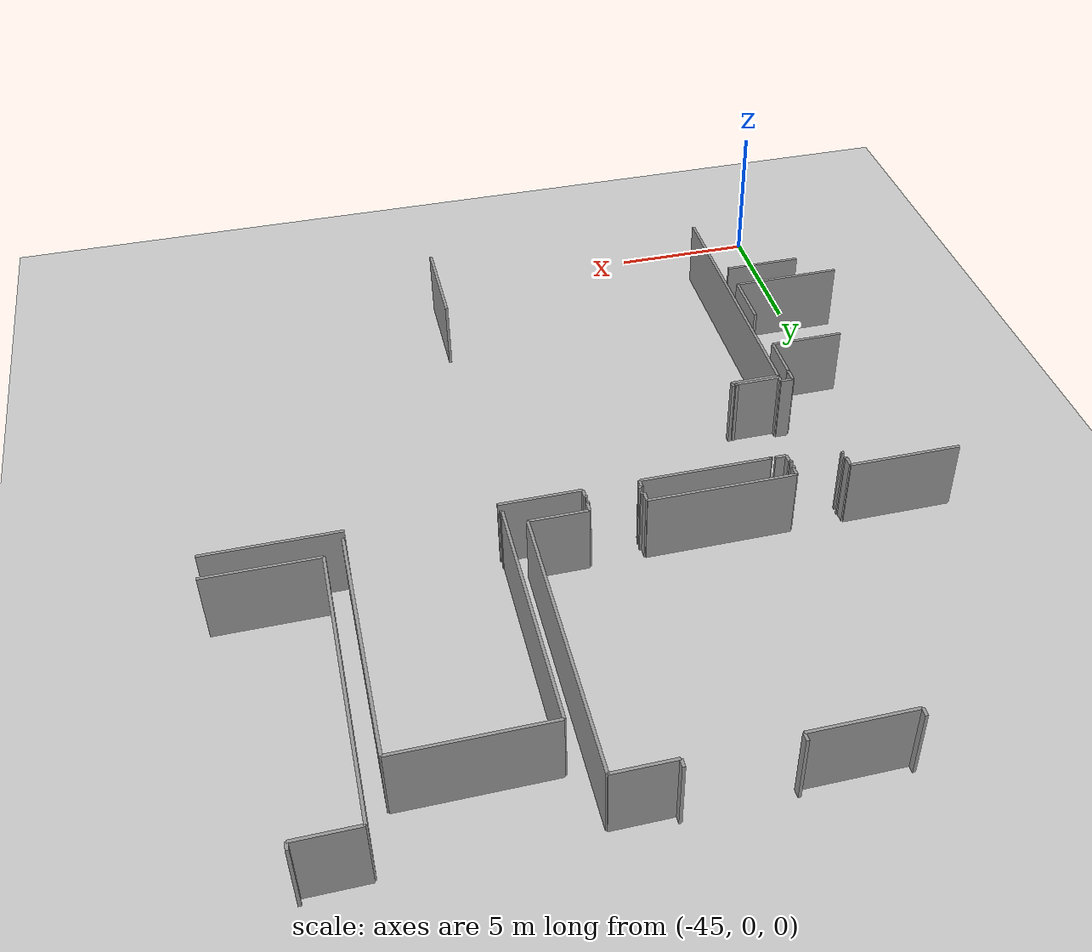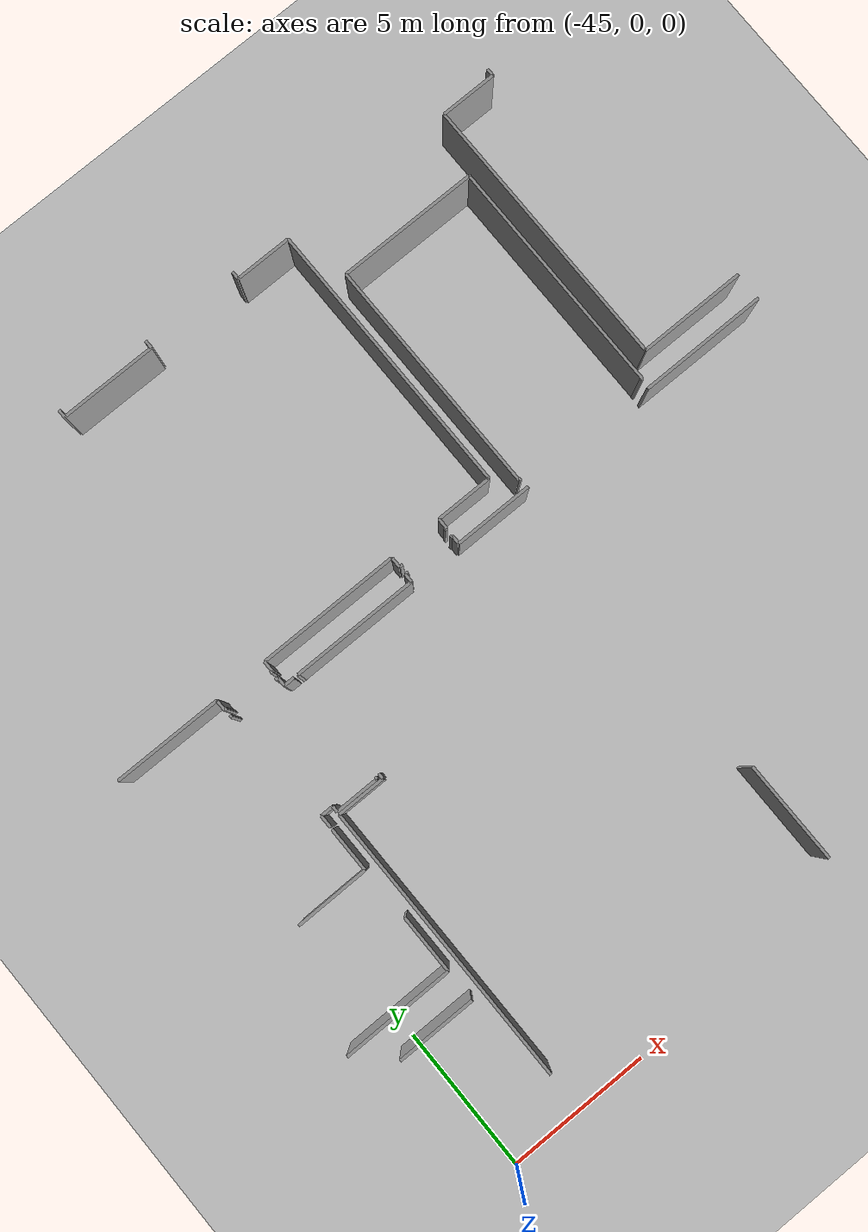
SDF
<sdf version="1.6">
 <world name="default">
  <model name="ground_plane">
   <static>1</static>
   <link name="link">
    <collision name="collision">
     <geometry><plane><normal>0 0 1</normal><size>100 100</size></plane></geometry>
     <surface><friction><ode><mu>100</mu><mu2>50</mu2></ode></friction></surface>
    </collision>
    <visual name="visual">
     <cast_shadows>0</cast_shadows>
     <geometry><plane><normal>0 0 1</normal><size>100 100</size></plane></geometry>
     <material>
      <script><uri>file://media/materials/scripts/gazebo.material</uri><name>Gazebo/Grey</name></script>
     </material>
    </visual>
   </link>
  </model>
  <model name="0510032192_A_40_1_103">
   <static>1</static>
   <link name="Wall_39">
    <collision name="Wall_39_Collision">
     <geometry><box><size>0.279623442125 0.1 2.5</size></box></geometry>
     <pose>0.139811721063 0 1.25 0 0 0</pose>
    </collision>
    <visual name="Wall_39_Visual">
     <pose>0.139811721063 0 1.25 0 0 0</pose>
     <geometry><box><size>0.279623442125 0.1 2.5</size></box></geometry>
     <material>
      <script><uri>file://media/materials/scripts/gazebo.material</uri><name>Gazebo/Grey</name></script>
      <ambient>1 1 1 1</ambient>
     </material>
    </visual>
    <pose>26.3244953184 -0.01816726589 0 0 0 -1.57079632679</pose>
   </link>
   <link name="Wall_40">
    <collision name="Wall_40_Collision">
     <geometry><box><size>3.39765985288 0.1 2.5</size></box></geometry>
     <pose>1.69882992644 0 1.25 0 0 0</pose>
    </collision>
    <visual name="Wall_40_Visual">
     <pose>1.69882992644 0 1.25 0 0 0</pose>
     <geometry><box><size>3.39765985288 0.1 2.5</size></box></geometry>
     <material>
      <script><uri>file://media/materials/scripts/gazebo.material</uri><name>Gazebo/Grey</name></script>
      <ambient>1 1 1 1</ambient>
     </material>
    </visual>
    <pose>26.3244953184 -0.297790708015 0 0 0 0.0</pose>
   </link>
   <link name="Wall_41">
    <collision name="Wall_41_Collision">
     <geometry><box><size>0.280639792664 0.1 2.5</size></box></geometry>
     <pose>0.140319896332 0 1.25 0 0 0</pose>
    </collision>
    <visual name="Wall_41_Visual">
     <pose>0.140319896332 0 1.25 0 0 0</pose>
     <geometry><box><size>0.280639792664 0.1 2.5</size></box></geometry>
     <material>
      <script><uri>file://media/materials/scripts/gazebo.material</uri><name>Gazebo/Grey</name></script>
      <ambient>1 1 1 1</ambient>
     </material>
    </visual>
    <pose>29.7221551713 -0.297790708015 0 0 0 1.57079632679</pose>
   </link>
   <link name="Wall_42">
    <collision name="Wall_42_Collision">
     <geometry><box><size>0.281783187021 0.1 2.5</size></box></geometry>
     <pose>0.140891593511 0 1.25 0 0 0</pose>
    </collision>
    <visual name="Wall_42_Visual">
     <pose>0.140891593511 0 1.25 0 0 0</pose>
     <geometry><box><size>0.281783187021 0.1 2.5</size></box></geometry>
     <material>
      <script><uri>file://media/materials/scripts/gazebo.material</uri><name>Gazebo/Grey</name></script>
      <ambient>1 1 1 1</ambient>
     </material>
    </visual>
    <pose>33.1466212697 -0.0171509153507 0 0 0 -1.57079632679</pose>
   </link>
   <link name="Wall_43">
    <collision name="Wall_43_Collision">
     <geometry><box><size>1.98442442799 0.1 2.5</size></box></geometry>
     <pose>0.992212213993 0 1.25 0 0 0</pose>
    </collision>
    <visual name="Wall_43_Visual">
     <pose>0.992212213993 0 1.25 0 0 0</pose>
     <geometry><box><size>1.98442442799 0.1 2.5</size></box></geometry>
     <material>
      <script><uri>file://media/materials/scripts/gazebo.material</uri><name>Gazebo/Grey</name></script>
      <ambient>1 1 1 1</ambient>
     </material>
    </visual>
    <pose>33.1466212697 -0.298934102372 0 0 0 0.0</pose>
   </link>
   <link name="Wall_44">
    <collision name="Wall_44_Collision">
     <geometry><box><size>9.73740042941 0.1 2.5</size></box></geometry>
     <pose>4.8687002147 0 1.25 0 0 0</pose>
    </collision>
    <visual name="Wall_44_Visual">
     <pose>4.8687002147 0 1.25 0 0 0</pose>
     <geometry><box><size>9.73740042941 0.1 2.5</size></box></geometry>
     <material>
      <script><uri>file://media/materials/scripts/gazebo.material</uri><name>Gazebo/Grey</name></script>
      <ambient>1 1 1 1</ambient>
     </material>
    </visual>
    <pose>35.1310456977 -0.298934102372 0 0 0 -1.57079632679</pose>
   </link>
   <link name="Wall_45">
    <collision name="Wall_45_Collision">
     <geometry><box><size>1.97540431695 0.1 2.5</size></box></geometry>
     <pose>0.987702158474 0 1.25 0 0 0</pose>
    </collision>
    <visual name="Wall_45_Visual">
     <pose>0.987702158474 0 1.25 0 0 0</pose>
     <geometry><box><size>1.97540431695 0.1 2.5</size></box></geometry>
     <material>
      <script><uri>file://media/materials/scripts/gazebo.material</uri><name>Gazebo/Grey</name></script>
      <ambient>1 1 1 1</ambient>
     </material>
    </visual>
    <pose>35.1310456977 -10.0363345318 0 0 0 3.14159265359</pose>
   </link>
   <link name="Wall_46">
    <collision name="Wall_46_Collision">
     <geometry><box><size>0.368045939044 0.1 2.5</size></box></geometry>
     <pose>0.184022969522 0 1.25 0 0 0</pose>
    </collision>
    <visual name="Wall_46_Visual">
     <pose>0.184022969522 0 1.25 0 0 0</pose>
     <geometry><box><size>0.368045939044 0.1 2.5</size></box></geometry>
     <material>
      <script><uri>file://media/materials/scripts/gazebo.material</uri><name>Gazebo/Grey</name></script>
      <ambient>1 1 1 1</ambient>
     </material>
    </visual>
    <pose>33.1556413807 -10.0363345318 0 0 0 -1.57079632679</pose>
   </link>
   <link name="Wall_47">
    <collision name="Wall_47_Collision">
     <geometry><box><size>0.0823243936834 0.1 2.5</size></box></geometry>
     <pose>0.0411621968417 0 1.25 0 0 0</pose>
    </collision>
    <visual name="Wall_47_Visual">
     <pose>0.0411621968417 0 1.25 0 0 0</pose>
     <geometry><box><size>0.0823243936834 0.1 2.5</size></box></geometry>
     <material>
      <script><uri>file://media/materials/scripts/gazebo.material</uri><name>Gazebo/Grey</name></script>
      <ambient>1 1 1 1</ambient>
     </material>
    </visual>
    <pose>33.1556413807 -10.4043804708 0 0 0 3.14159265359</pose>
   </link>
   <link name="Wall_48">
    <collision name="Wall_48_Collision">
     <geometry><box><size>0.115228742393 0.1 2.5</size></box></geometry>
     <pose>0.0576143711966 0 1.25 0 0 0</pose>
    </collision>
    <visual name="Wall_48_Visual">
     <pose>0.0576143711966 0 1.25 0 0 0</pose>
     <geometry><box><size>0.115228742393 0.1 2.5</size></box></geometry>
     <material>
      <script><uri>file://media/materials/scripts/gazebo.material</uri><name>Gazebo/Grey</name></script>
      <ambient>1 1 1 1</ambient>
     </material>
    </visual>
    <pose>31.4127272496 -10.4043804708 0 0 0 3.14159265359</pose>
   </link>
   <link name="Wall_49">
    <collision name="Wall_49_Collision">
     <geometry><box><size>0.365759150331 0.1 2.5</size></box></geometry>
     <pose>0.182879575165 0 1.25 0 0 0</pose>
    </collision>
    <visual name="Wall_49_Visual">
     <pose>0.182879575165 0 1.25 0 0 0</pose>
     <geometry><box><size>0.365759150331 0.1 2.5</size></box></geometry>
     <material>
      <script><uri>file://media/materials/scripts/gazebo.material</uri><name>Gazebo/Grey</name></script>
      <ambient>1 1 1 1</ambient>
     </material>
    </visual>
    <pose>31.2974985072 -10.4043804708 0 0 0 1.57079632679</pose>
   </link>
   <link name="Wall_50">
    <collision name="Wall_50_Collision">
     <geometry><box><size>4.96639691029 0.1 2.5</size></box></geometry>
     <pose>2.48319845515 0 1.25 0 0 0</pose>
    </collision>
    <visual name="Wall_50_Visual">
     <pose>2.48319845515 0 1.25 0 0 0</pose>
     <geometry><box><size>4.96639691029 0.1 2.5</size></box></geometry>
     <material>
      <script><uri>file://media/materials/scripts/gazebo.material</uri><name>Gazebo/Grey</name></script>
      <ambient>1 1 1 1</ambient>
     </material>
    </visual>
    <pose>31.2974985072 -10.0386213205 0 0 0 3.14159265359</pose>
   </link>
   <link name="Wall_51">
    <collision name="Wall_51_Collision">
     <geometry><box><size>0.37122203448 0.1 2.5</size></box></geometry>
     <pose>0.18561101724 0 1.25 0 0 0</pose>
    </collision>
    <visual name="Wall_51_Visual">
     <pose>0.18561101724 0 1.25 0 0 0</pose>
     <geometry><box><size>0.37122203448 0.1 2.5</size></box></geometry>
     <material>
      <script><uri>file://media/materials/scripts/gazebo.material</uri><name>Gazebo/Grey</name></script>
      <ambient>1 1 1 1</ambient>
     </material>
    </visual>
    <pose>26.3311015969 -10.0386213205 0 0 0 -1.57079632679</pose>
   </link>
   <link name="Wall_52">
    <collision name="Wall_52_Collision">
     <geometry><box><size>0.0811809993267 0.1 2.5</size></box></geometry>
     <pose>0.0405904996633 0 1.25 0 0 0</pose>
    </collision>
    <visual name="Wall_52_Visual">
     <pose>0.0405904996633 0 1.25 0 0 0</pose>
     <geometry><box><size>0.0811809993267 0.1 2.5</size></box></geometry>
     <material>
      <script><uri>file://media/materials/scripts/gazebo.material</uri><name>Gazebo/Grey</name></script>
      <ambient>1 1 1 1</ambient>
     </material>
    </visual>
    <pose>26.3311015969 -10.409843355 0 0 0 3.14159265359</pose>
   </link>
   <link name="Wall_53">
    <collision name="Wall_53_Collision">
     <geometry><box><size>0.0879143216495 0.1 2.5</size></box></geometry>
     <pose>0.0439571608248 0 1.25 0 0 0</pose>
    </collision>
    <visual name="Wall_53_Visual">
     <pose>0.0439571608248 0 1.25 0 0 0</pose>
     <geometry><box><size>0.0879143216495 0.1 2.5</size></box></geometry>
     <material>
      <script><uri>file://media/materials/scripts/gazebo.material</uri><name>Gazebo/Grey</name></script>
      <ambient>1 1 1 1</ambient>
     </material>
    </visual>
    <pose>24.5764994347 -10.409843355 0 0 0 3.14159265359</pose>
   </link>
   <link name="Wall_54">
    <collision name="Wall_54_Collision">
     <geometry><box><size>0.373508823193 0.1 2.5</size></box></geometry>
     <pose>0.186754411597 0 1.25 0 0 0</pose>
    </collision>
    <visual name="Wall_54_Visual">
     <pose>0.186754411597 0 1.25 0 0 0</pose>
     <geometry><box><size>0.373508823193 0.1 2.5</size></box></geometry>
     <material>
      <script><uri>file://media/materials/scripts/gazebo.material</uri><name>Gazebo/Grey</name></script>
      <ambient>1 1 1 1</ambient>
     </material>
    </visual>
    <pose>24.488585113 -10.409843355 0 0 0 1.57079632679</pose>
   </link>
   <link name="Wall_55">
    <collision name="Wall_55_Collision">
     <geometry><box><size>3.79645754655 0.1 2.5</size></box></geometry>
     <pose>1.89822877327 0 1.25 0 0 0</pose>
    </collision>
    <visual name="Wall_55_Visual">
     <pose>1.89822877327 0 1.25 0 0 0</pose>
     <geometry><box><size>3.79645754655 0.1 2.5</size></box></geometry>
     <material>
      <script><uri>file://media/materials/scripts/gazebo.material</uri><name>Gazebo/Grey</name></script>
      <ambient>1 1 1 1</ambient>
     </material>
    </visual>
    <pose>24.488585113 -10.0363345318 0 0 0 3.13965175317</pose>
   </link>
   <link name="Wall_73">
    <collision name="Wall_73_Collision">
     <geometry><box><size>0.100618703391 0.1 2.5</size></box></geometry>
     <pose>0.0503093516954 0 1.25 0 0 0</pose>
    </collision>
    <visual name="Wall_73_Visual">
     <pose>0.0503093516954 0 1.25 0 0 0</pose>
     <geometry><box><size>0.100618703391 0.1 2.5</size></box></geometry>
     <material>
      <script><uri>file://media/materials/scripts/gazebo.material</uri><name>Gazebo/Grey</name></script>
      <ambient>1 1 1 1</ambient>
     </material>
    </visual>
    <pose>24.4648279191 -10.6705372683 0 0 0 0.0</pose>
   </link>
   <link name="Wall_74">
    <collision name="Wall_74_Collision">
     <geometry><box><size>0.105700456087 0.1 2.5</size></box></geometry>
     <pose>0.0528502280436 0 1.25 0 0 0</pose>
    </collision>
    <visual name="Wall_74_Visual">
     <pose>0.0528502280436 0 1.25 0 0 0</pose>
     <geometry><box><size>0.105700456087 0.1 2.5</size></box></geometry>
     <material>
      <script><uri>file://media/materials/scripts/gazebo.material</uri><name>Gazebo/Grey</name></script>
      <ambient>1 1 1 1</ambient>
     </material>
    </visual>
    <pose>26.2349294272 -10.6705372683 0 0 0 0.0</pose>
   </link>
   <link name="Wall_75">
    <collision name="Wall_75_Collision">
     <geometry><box><size>0.309478739217 0.1 2.5</size></box></geometry>
     <pose>0.154739369609 0 1.25 0 0 0</pose>
    </collision>
    <visual name="Wall_75_Visual">
     <pose>0.154739369609 0 1.25 0 0 0</pose>
     <geometry><box><size>0.309478739217 0.1 2.5</size></box></geometry>
     <material>
      <script><uri>file://media/materials/scripts/gazebo.material</uri><name>Gazebo/Grey</name></script>
      <ambient>1 1 1 1</ambient>
     </material>
    </visual>
    <pose>26.3406298832 -10.6705372683 0 0 0 -1.57079632679</pose>
   </link>
   <link name="Wall_76">
    <collision name="Wall_76_Collision">
     <geometry><box><size>0.371349078297 0.1 2.5</size></box></geometry>
     <pose>0.185674539149 0 1.25 0 0 0</pose>
    </collision>
    <visual name="Wall_76_Visual">
     <pose>0.185674539149 0 1.25 0 0 0</pose>
     <geometry><box><size>0.371349078297 0.1 2.5</size></box></geometry>
     <material>
      <script><uri>file://media/materials/scripts/gazebo.material</uri><name>Gazebo/Grey</name></script>
      <ambient>1 1 1 1</ambient>
     </material>
    </visual>
    <pose>26.3406298832 -10.9800160075 0 0 0 0.0</pose>
   </link>
   <link name="Wall_77">
    <collision name="Wall_77_Collision">
     <geometry><box><size>0.0833407442227 0.1 2.5</size></box></geometry>
     <pose>0.0416703721113 0 1.25 0 0 0</pose>
    </collision>
    <visual name="Wall_77_Visual">
     <pose>0.0416703721113 0 1.25 0 0 0</pose>
     <geometry><box><size>0.0833407442227 0.1 2.5</size></box></geometry>
     <material>
      <script><uri>file://media/materials/scripts/gazebo.material</uri><name>Gazebo/Grey</name></script>
      <ambient>1 1 1 1</ambient>
     </material>
    </visual>
    <pose>26.7119789615 -14.8388449176 0 0 0 -1.57079632679</pose>
   </link>
   <link name="Wall_78">
    <collision name="Wall_78_Collision">
     <geometry><box><size>1.53380000762 0.1 2.5</size></box></geometry>
     <pose>0.766900003811 0 1.25 0 0 0</pose>
    </collision>
    <visual name="Wall_78_Visual">
     <pose>0.766900003811 0 1.25 0 0 0</pose>
     <geometry><box><size>1.53380000762 0.1 2.5</size></box></geometry>
     <material>
      <script><uri>file://media/materials/scripts/gazebo.material</uri><name>Gazebo/Grey</name></script>
      <ambient>1 1 1 1</ambient>
     </material>
    </visual>
    <pose>26.7119789615 -14.9221856618 0 0 0 3.14159265359</pose>
   </link>
   <link name="Wall_79">
    <collision name="Wall_79_Collision">
     <geometry><box><size>0.208478904374 0.1 2.5</size></box></geometry>
     <pose>0.104239452187 0 1.25 0 0 0</pose>
    </collision>
    <visual name="Wall_79_Visual">
     <pose>0.104239452187 0 1.25 0 0 0</pose>
     <geometry><box><size>0.208478904374 0.1 2.5</size></box></geometry>
     <material>
      <script><uri>file://media/materials/scripts/gazebo.material</uri><name>Gazebo/Grey</name></script>
      <ambient>1 1 1 1</ambient>
     </material>
    </visual>
    <pose>25.1781789539 -14.9221856618 0 0 0 1.57079632679</pose>
   </link>
   <link name="Wall_80">
    <collision name="Wall_80_Collision">
     <geometry><box><size>0.442239528413 0.1 2.5</size></box></geometry>
     <pose>0.221119764207 0 1.25 0 0 0</pose>
    </collision>
    <visual name="Wall_80_Visual">
     <pose>0.221119764207 0 1.25 0 0 0</pose>
     <geometry><box><size>0.442239528413 0.1 2.5</size></box></geometry>
     <material>
      <script><uri>file://media/materials/scripts/gazebo.material</uri><name>Gazebo/Grey</name></script>
      <ambient>1 1 1 1</ambient>
     </material>
    </visual>
    <pose>25.1781789539 -14.7137067575 0 0 0 3.14159265359</pose>
   </link>
   <link name="Wall_81">
    <collision name="Wall_81_Collision">
     <geometry><box><size>0.442239528413 0.1 2.5</size></box></geometry>
     <pose>0.221119764207 0 1.25 0 0 0</pose>
    </collision>
    <visual name="Wall_81_Visual">
     <pose>0.221119764207 0 1.25 0 0 0</pose>
     <geometry><box><size>0.442239528413 0.1 2.5</size></box></geometry>
     <material>
      <script><uri>file://media/materials/scripts/gazebo.material</uri><name>Gazebo/Grey</name></script>
      <ambient>1 1 1 1</ambient>
     </material>
    </visual>
    <pose>24.7359394255 -14.7137067575 0 0 0 -1.57079632679</pose>
   </link>
   <link name="Wall_109">
    <collision name="Wall_109_Collision">
     <geometry><box><size>1.56619618106 0.1 2.5</size></box></geometry>
     <pose>0.783098090531 0 1.25 0 0 0</pose>
    </collision>
    <visual name="Wall_109_Visual">
     <pose>0.783098090531 0 1.25 0 0 0</pose>
     <geometry><box><size>1.56619618106 0.1 2.5</size></box></geometry>
     <material>
      <script><uri>file://media/materials/scripts/gazebo.material</uri><name>Gazebo/Grey</name></script>
      <ambient>1 1 1 1</ambient>
     </material>
    </visual>
    <pose>24.7297142785 -15.2193411508 0 0 0 -1.57079632679</pose>
   </link>
   <link name="Wall_110">
    <collision name="Wall_110_Collision">
     <geometry><box><size>2.55183311199 0.1 2.5</size></box></geometry>
     <pose>1.275916556 0 1.25 0 0 0</pose>
    </collision>
    <visual name="Wall_110_Visual">
     <pose>1.275916556 0 1.25 0 0 0</pose>
     <geometry><box><size>2.55183311199 0.1 2.5</size></box></geometry>
     <material>
      <script><uri>file://media/materials/scripts/gazebo.material</uri><name>Gazebo/Grey</name></script>
      <ambient>1 1 1 1</ambient>
     </material>
    </visual>
    <pose>24.7297142785 -16.7855373318 0 0 0 -3.13666388737</pose>
   </link>
   <link name="Wall_134">
    <collision name="Wall_134_Collision">
     <geometry><box><size>2.04057779528 0.1 2.5</size></box></geometry>
     <pose>1.02028889764 0 1.25 0 0 0</pose>
    </collision>
    <visual name="Wall_134_Visual">
     <pose>1.02028889764 0 1.25 0 0 0</pose>
     <geometry><box><size>2.04057779528 0.1 2.5</size></box></geometry>
     <material>
      <script><uri>file://media/materials/scripts/gazebo.material</uri><name>Gazebo/Grey</name></script>
      <ambient>1 1 1 1</ambient>
     </material>
    </visual>
    <pose>24.7551230419 -18.6103947251 0 0 0 -1.57079632679</pose>
   </link>
   <link name="Wall_135">
    <collision name="Wall_135_Collision">
     <geometry><box><size>3.87511347875 0.1 2.5</size></box></geometry>
     <pose>1.93755673938 0 1.25 0 0 0</pose>
    </collision>
    <visual name="Wall_135_Visual">
     <pose>1.93755673938 0 1.25 0 0 0</pose>
     <geometry><box><size>3.87511347875 0.1 2.5</size></box></geometry>
     <material>
      <script><uri>file://media/materials/scripts/gazebo.material</uri><name>Gazebo/Grey</name></script>
      <ambient>1 1 1 1</ambient>
     </material>
    </visual>
    <pose>24.7551230419 -20.6509725204 0 0 0 -3.13815026997</pose>
   </link>
   <link name="Wall_139">
    <collision name="Wall_139_Collision">
     <geometry><box><size>3.53601057005 0.1 2.5</size></box></geometry>
     <pose>1.76800528502 0 1.25 0 0 0</pose>
    </collision>
    <visual name="Wall_139_Visual">
     <pose>1.76800528502 0 1.25 0 0 0</pose>
     <geometry><box><size>3.53601057005 0.1 2.5</size></box></geometry>
     <material>
      <script><uri>file://media/materials/scripts/gazebo.material</uri><name>Gazebo/Grey</name></script>
      <ambient>1 1 1 1</ambient>
     </material>
    </visual>
    <pose>35.6299467686 -21.7967807097 0 0 0 -1.57079632679</pose>
   </link>
   <link name="Wall_147">
    <collision name="Wall_147_Collision">
     <geometry><box><size>4.47651595035 0.1 2.5</size></box></geometry>
     <pose>2.23825797518 0 1.25 0 0 0</pose>
    </collision>
    <visual name="Wall_147_Visual">
     <pose>2.23825797518 0 1.25 0 0 0</pose>
     <geometry><box><size>4.47651595035 0.1 2.5</size></box></geometry>
     <material>
      <script><uri>file://media/materials/scripts/gazebo.material</uri><name>Gazebo/Grey</name></script>
      <ambient>1 1 1 1</ambient>
     </material>
    </visual>
    <pose>45.1401928525 -10.9962776161 0 0 0 3.14159265359</pose>
   </link>
   <link name="Wall_148">
    <collision name="Wall_148_Collision">
     <geometry><box><size>2.75583448731 0.1 2.5</size></box></geometry>
     <pose>1.37791724366 0 1.25 0 0 0</pose>
    </collision>
    <visual name="Wall_148_Visual">
     <pose>1.37791724366 0 1.25 0 0 0</pose>
     <geometry><box><size>2.75583448731 0.1 2.5</size></box></geometry>
     <material>
      <script><uri>file://media/materials/scripts/gazebo.material</uri><name>Gazebo/Grey</name></script>
      <ambient>1 1 1 1</ambient>
     </material>
    </visual>
    <pose>35.8988985301 -10.9962776161 0 0 0 3.14159265359</pose>
   </link>
   <link name="Wall_149">
    <collision name="Wall_149_Collision">
     <geometry><box><size>0.306048556147 0.1 2.5</size></box></geometry>
     <pose>0.153024278074 0 1.25 0 0 0</pose>
    </collision>
    <visual name="Wall_149_Visual">
     <pose>0.153024278074 0 1.25 0 0 0</pose>
     <geometry><box><size>0.306048556147 0.1 2.5</size></box></geometry>
     <material>
      <script><uri>file://media/materials/scripts/gazebo.material</uri><name>Gazebo/Grey</name></script>
      <ambient>1 1 1 1</ambient>
     </material>
    </visual>
    <pose>33.1430640428 -10.9962776161 0 0 0 1.57079632679</pose>
   </link>
   <link name="Wall_150">
    <collision name="Wall_150_Collision">
     <geometry><box><size>0.0758451589953 0.1 2.5</size></box></geometry>
     <pose>0.0379225794977 0 1.25 0 0 0</pose>
    </collision>
    <visual name="Wall_150_Visual">
     <pose>0.0379225794977 0 1.25 0 0 0</pose>
     <geometry><box><size>0.0758451589953 0.1 2.5</size></box></geometry>
     <material>
      <script><uri>file://media/materials/scripts/gazebo.material</uri><name>Gazebo/Grey</name></script>
      <ambient>1 1 1 1</ambient>
     </material>
    </visual>
    <pose>33.1430640428 -10.69022906 0 0 0 3.14159265359</pose>
   </link>
   <link name="Wall_151">
    <collision name="Wall_151_Collision">
     <geometry><box><size>0.110528121149 0.1 2.5</size></box></geometry>
     <pose>0.0552640605745 0 1.25 0 0 0</pose>
    </collision>
    <visual name="Wall_151_Visual">
     <pose>0.0552640605745 0 1.25 0 0 0</pose>
     <geometry><box><size>0.110528121149 0.1 2.5</size></box></geometry>
     <material>
      <script><uri>file://media/materials/scripts/gazebo.material</uri><name>Gazebo/Grey</name></script>
      <ambient>1 1 1 1</ambient>
     </material>
    </visual>
    <pose>31.4002769555 -10.69022906 0 0 0 3.14159265359</pose>
   </link>
   <link name="Wall_152">
    <collision name="Wall_152_Collision">
     <geometry><box><size>0.292200780049 0.1 2.5</size></box></geometry>
     <pose>0.146100390025 0 1.25 0 0 0</pose>
    </collision>
    <visual name="Wall_152_Visual">
     <pose>0.146100390025 0 1.25 0 0 0</pose>
     <geometry><box><size>0.292200780049 0.1 2.5</size></box></geometry>
     <material>
      <script><uri>file://media/materials/scripts/gazebo.material</uri><name>Gazebo/Grey</name></script>
      <ambient>1 1 1 1</ambient>
     </material>
    </visual>
    <pose>31.2897488344 -10.69022906 0 0 0 -1.57079632679</pose>
   </link>
   <link name="Wall_153">
    <collision name="Wall_153_Collision">
     <geometry><box><size>4.43319400861 0.1 2.5</size></box></geometry>
     <pose>2.21659700431 0 1.25 0 0 0</pose>
    </collision>
    <visual name="Wall_153_Visual">
     <pose>2.21659700431 0 1.25 0 0 0</pose>
     <geometry><box><size>4.43319400861 0.1 2.5</size></box></geometry>
     <material>
      <script><uri>file://media/materials/scripts/gazebo.material</uri><name>Gazebo/Grey</name></script>
      <ambient>1 1 1 1</ambient>
     </material>
    </visual>
    <pose>31.2897488344 -10.9824298401 0 0 0 3.14159265359</pose>
   </link>
   <link name="Wall_154">
    <collision name="Wall_154_Collision">
     <geometry><box><size>0.0579319807402 0.1 2.5</size></box></geometry>
     <pose>0.0289659903701 0 1.25 0 0 0</pose>
    </collision>
    <visual name="Wall_154_Visual">
     <pose>0.0289659903701 0 1.25 0 0 0</pose>
     <geometry><box><size>0.0579319807402 0.1 2.5</size></box></geometry>
     <material>
      <script><uri>file://media/materials/scripts/gazebo.material</uri><name>Gazebo/Grey</name></script>
      <ambient>1 1 1 1</ambient>
     </material>
    </visual>
    <pose>26.8565548258 -10.9824298401 0 0 0 -1.57079632679</pose>
   </link>
   <link name="Wall_155">
    <collision name="Wall_155_Collision">
     <geometry><box><size>0.193106602467 0.1 2.5</size></box></geometry>
     <pose>0.0965533012336 0 1.25 0 0 0</pose>
    </collision>
    <visual name="Wall_155_Visual">
     <pose>0.0965533012336 0 1.25 0 0 0</pose>
     <geometry><box><size>0.193106602467 0.1 2.5</size></box></geometry>
     <material>
      <script><uri>file://media/materials/scripts/gazebo.material</uri><name>Gazebo/Grey</name></script>
      <ambient>1 1 1 1</ambient>
     </material>
    </visual>
    <pose>26.8565548258 -14.8304600257 0 0 0 -1.57079632679</pose>
   </link>
   <link name="Wall_156">
    <collision name="Wall_156_Collision">
     <geometry><box><size>1.68599850088 0.1 2.5</size></box></geometry>
     <pose>0.842999250441 0 1.25 0 0 0</pose>
    </collision>
    <visual name="Wall_156_Visual">
     <pose>0.842999250441 0 1.25 0 0 0</pose>
     <geometry><box><size>1.68599850088 0.1 2.5</size></box></geometry>
     <material>
      <script><uri>file://media/materials/scripts/gazebo.material</uri><name>Gazebo/Grey</name></script>
      <ambient>1 1 1 1</ambient>
     </material>
    </visual>
    <pose>26.8565548258 -15.0235666281 0 0 0 3.14159265359</pose>
   </link>
   <link name="Wall_157">
    <collision name="Wall_157_Collision">
     <geometry><box><size>9.85631868264 0.1 2.5</size></box></geometry>
     <pose>4.92815934132 0 1.25 0 0 0</pose>
    </collision>
    <visual name="Wall_157_Visual">
     <pose>4.92815934132 0 1.25 0 0 0</pose>
     <geometry><box><size>9.85631868264 0.1 2.5</size></box></geometry>
     <material>
      <script><uri>file://media/materials/scripts/gazebo.material</uri><name>Gazebo/Grey</name></script>
      <ambient>1 1 1 1</ambient>
     </material>
    </visual>
    <pose>25.1705563249 -15.0235666281 0 0 0 -1.56976516014</pose>
   </link>
   <link name="Wall_158">
    <collision name="Wall_158_Collision">
     <geometry><box><size>8.35656117795 0.1 2.5</size></box></geometry>
     <pose>4.17828058898 0 1.25 0 0 0</pose>
    </collision>
    <visual name="Wall_158_Visual">
     <pose>4.17828058898 0 1.25 0 0 0</pose>
     <geometry><box><size>8.35656117795 0.1 2.5</size></box></geometry>
     <material>
      <script><uri>file://media/materials/scripts/gazebo.material</uri><name>Gazebo/Grey</name></script>
      <ambient>1 1 1 1</ambient>
     </material>
    </visual>
    <pose>35.8047590614 -10.6668529976 0 0 0 1.57079632679</pose>
   </link>
   <link name="Wall_159">
    <collision name="Wall_159_Collision">
     <geometry><box><size>4.94149632208 0.1 2.5</size></box></geometry>
     <pose>2.47074816104 0 1.25 0 0 0</pose>
    </collision>
    <visual name="Wall_159_Visual">
     <pose>2.47074816104 0 1.25 0 0 0</pose>
     <geometry><box><size>4.94149632208 0.1 2.5</size></box></geometry>
     <material>
      <script><uri>file://media/materials/scripts/gazebo.material</uri><name>Gazebo/Grey</name></script>
      <ambient>1 1 1 1</ambient>
     </material>
    </visual>
    <pose>35.8047590614 -2.31029181965 0 0 0 0.0</pose>
   </link>
   <link name="Wall_160">
    <collision name="Wall_160_Collision">
     <geometry><box><size>8.34677880401 0.1 2.5</size></box></geometry>
     <pose>4.173389402 0 1.25 0 0 0</pose>
    </collision>
    <visual name="Wall_160_Visual">
     <pose>4.173389402 0 1.25 0 0 0</pose>
     <geometry><box><size>8.34677880401 0.1 2.5</size></box></geometry>
     <material>
      <script><uri>file://media/materials/scripts/gazebo.material</uri><name>Gazebo/Grey</name></script>
      <ambient>1 1 1 1</ambient>
     </material>
    </visual>
    <pose>40.7462553835 -2.31029181965 0 0 0 -1.57079632679</pose>
   </link>
   <link name="Wall_161">
    <collision name="Wall_161_Collision">
     <geometry><box><size>0.0604728570884 0.1 2.5</size></box></geometry>
     <pose>0.0302364285442 0 1.25 0 0 0</pose>
    </collision>
    <visual name="Wall_161_Visual">
     <pose>0.0302364285442 0 1.25 0 0 0</pose>
     <geometry><box><size>0.0604728570884 0.1 2.5</size></box></geometry>
     <material>
      <script><uri>file://media/materials/scripts/gazebo.material</uri><name>Gazebo/Grey</name></script>
      <ambient>1 1 1 1</ambient>
     </material>
    </visual>
    <pose>40.7462553835 -10.6570706237 0 0 0 3.14159265359</pose>
   </link>
   <link name="Wall_162">
    <collision name="Wall_162_Collision">
     <geometry><box><size>0.0812637642572 0.1 2.5</size></box></geometry>
     <pose>0.0406318821286 0 1.25 0 0 0</pose>
    </collision>
    <visual name="Wall_162_Visual">
     <pose>0.0406318821286 0 1.25 0 0 0</pose>
     <geometry><box><size>0.0812637642572 0.1 2.5</size></box></geometry>
     <material>
      <script><uri>file://media/materials/scripts/gazebo.material</uri><name>Gazebo/Grey</name></script>
      <ambient>1 1 1 1</ambient>
     </material>
    </visual>
    <pose>35.8854318855 -10.6570706237 0 0 0 -3.02092195496</pose>
   </link>
   <link name="Wall_174">
    <collision name="Wall_174_Collision">
     <geometry><box><size>3.75719385616 0.1 2.5</size></box></geometry>
     <pose>1.87859692808 0 1.25 0 0 0</pose>
    </collision>
    <visual name="Wall_174_Visual">
     <pose>1.87859692808 0 1.25 0 0 0</pose>
     <geometry><box><size>3.75719385616 0.1 2.5</size></box></geometry>
     <material>
      <script><uri>file://media/materials/scripts/gazebo.material</uri><name>Gazebo/Grey</name></script>
      <ambient>1 1 1 1</ambient>
     </material>
    </visual>
    <pose>41.3969738163 -10.0329043487 0 0 0 0.0</pose>
   </link>
   <link name="Wall_179">
    <collision name="Wall_179_Collision">
     <geometry><box><size>0.261837307687 0.1 2.5</size></box></geometry>
     <pose>0.130918653844 0 1.25 0 0 0</pose>
    </collision>
    <visual name="Wall_179_Visual">
     <pose>0.130918653844 0 1.25 0 0 0</pose>
     <geometry><box><size>0.261837307687 0.1 2.5</size></box></geometry>
     <material>
      <script><uri>file://media/materials/scripts/gazebo.material</uri><name>Gazebo/Grey</name></script>
      <ambient>1 1 1 1</ambient>
     </material>
    </visual>
    <pose>43.3825416386 -0.0254087634825 0 0 0 -1.57079632679</pose>
   </link>
   <link name="Wall_180">
    <collision name="Wall_180_Collision">
     <geometry><box><size>1.97718293039 0.1 2.5</size></box></geometry>
     <pose>0.988591465196 0 1.25 0 0 0</pose>
    </collision>
    <visual name="Wall_180_Visual">
     <pose>0.988591465196 0 1.25 0 0 0</pose>
     <geometry><box><size>1.97718293039 0.1 2.5</size></box></geometry>
     <material>
      <script><uri>file://media/materials/scripts/gazebo.material</uri><name>Gazebo/Grey</name></script>
      <ambient>1 1 1 1</ambient>
     </material>
    </visual>
    <pose>43.3825416386 -0.28724607117 0 0 0 3.14159265359</pose>
   </link>
   <link name="Wall_181">
    <collision name="Wall_181_Collision">
     <geometry><box><size>9.7456618846 0.1 2.5</size></box></geometry>
     <pose>4.8728309423 0 1.25 0 0 0</pose>
    </collision>
    <visual name="Wall_181_Visual">
     <pose>4.8728309423 0 1.25 0 0 0</pose>
     <geometry><box><size>9.7456618846 0.1 2.5</size></box></geometry>
     <material>
      <script><uri>file://media/materials/scripts/gazebo.material</uri><name>Gazebo/Grey</name></script>
      <ambient>1 1 1 1</ambient>
     </material>
    </visual>
    <pose>41.4053587082 -0.28724607117 0 0 0 -1.57165669863</pose>
   </link>
   <link name="Wall_411">
    <collision name="Wall_411_Collision">
     <geometry><box><size>2.74833890209 0.1 2.5</size></box></geometry>
     <pose>1.37416945104 0 1.25 0 0 0</pose>
    </collision>
    <visual name="Wall_411_Visual">
     <pose>1.37416945104 0 1.25 0 0 0</pose>
     <geometry><box><size>2.74833890209 0.1 2.5</size></box></geometry>
     <material>
      <script><uri>file://media/materials/scripts/gazebo.material</uri><name>Gazebo/Grey</name></script>
      <ambient>1 1 1 1</ambient>
     </material>
    </visual>
    <pose>24.7591884441 -21.7516801545 0 0 0 3.14159265359</pose>
   </link>
   <pose>-67.5 26.6902360474 0 0 0 0</pose>
  </model>
 </world>
</sdf>
